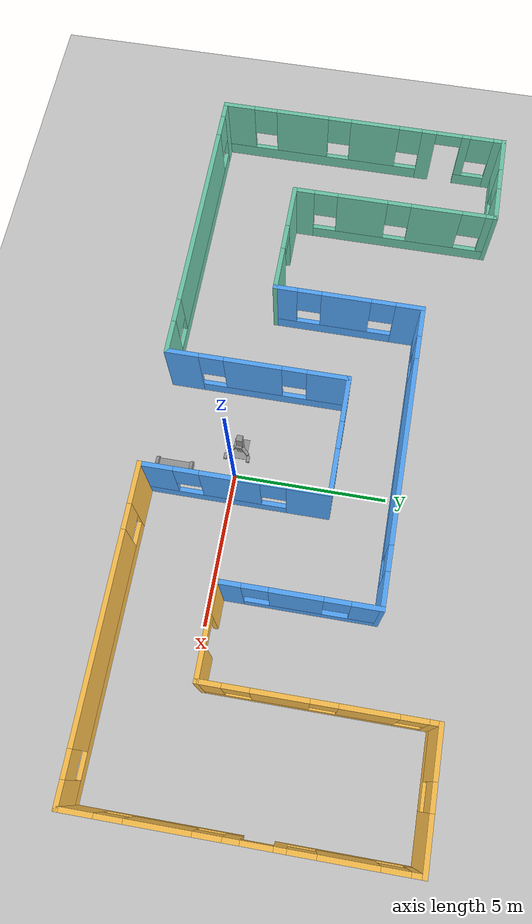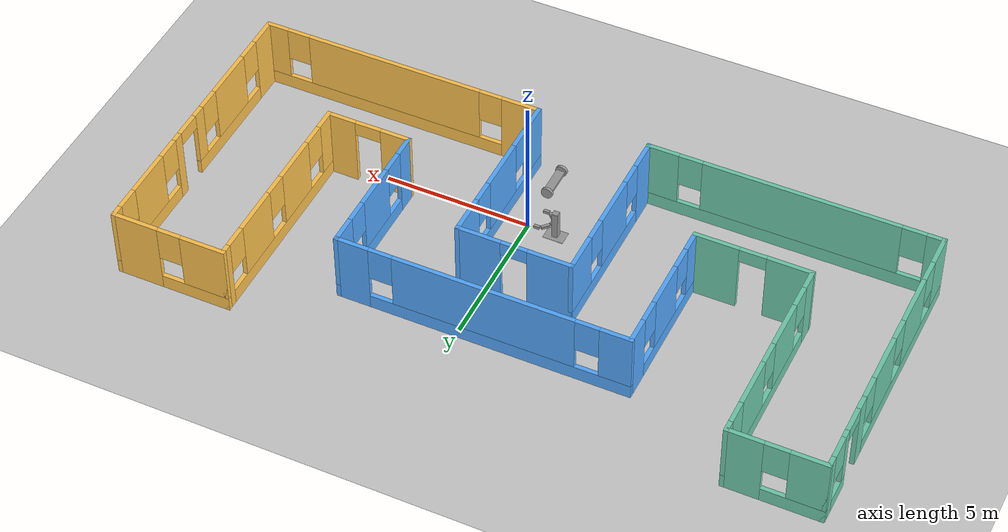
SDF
<sdf version="1.7">
 <world name="world2">
  <plugin name="welcome" filename="libwelcome.so"/>
  <light name="sun" type="directional">
   <pose>0 0 10 0 -0 0</pose>
   <diffuse>0.8 0.8 0.8 1</diffuse>
   <specular>0.2 0.2 0.2 1</specular>
   <attenuation>
    <range>1000</range>
    <constant>0.9</constant>
    <linear>0.01</linear>
    <quadratic>0.001</quadratic>
   </attenuation>
   <direction>-0.5 0.1 -0.9</direction>
   <spot><inner_angle>0</inner_angle><outer_angle>0</outer_angle><falloff>0</falloff></spot>
  </light>
  <model name="ground_plane">
   <static>1</static>
   <link name="link">
    <collision name="collision">
     <geometry><plane><normal>0 0 1</normal><size>100 100</size></plane></geometry>
     <surface><friction><ode><mu>100</mu><mu2>50</mu2></ode></friction></surface>
    </collision>
    <visual name="visual">
     <cast_shadows>0</cast_shadows>
     <geometry><plane><normal>0 0 1</normal><size>100 100</size></plane></geometry>
     <material>
      <script><uri>file://media/materials/scripts/gazebo.material</uri><name>Gazebo/Grey</name></script>
     </material>
    </visual>
   </link>
  </model>
  <gravity>0 0 -9.8</gravity>
  <magnetic_field>6e-06 2.3e-05 -4.2e-05</magnetic_field>
  <atmosphere type="adiabatic"/>
  <physics type="ode">
   <max_step_size>0.001</max_step_size>
   <real_time_factor>1</real_time_factor>
   <real_time_update_rate>1000</real_time_update_rate>
  </physics>
  <scene><ambient>0.4 0.4 0.4 1</ambient><background>0.7 0.7 0.7 1</background><shadows>1</shadows></scene>
  <spherical_coordinates>
   <surface_model>EARTH_WGS84</surface_model>
   <latitude_deg>0</latitude_deg>
   <longitude_deg>0</longitude_deg>
   <elevation>0</elevation>
   <heading_deg>0</heading_deg>
  </spherical_coordinates>
  <include><uri>model://gripper_base</uri><name>gripper</name><pose>-1 0 0.5 0 0 0</pose></include>
  <include><uri>model://hoverboard</uri><name>hoverboard0</name><pose>0 -2 0.2 0 0 0</pose></include>
  <include><uri>model://hoverboard</uri><name>hoverboard1</name><pose>0 -5 -0.4 0 0 0.6</pose></include>
  <include><uri>model://building1</uri><name>building1</name></include>
 </world>
</sdf>

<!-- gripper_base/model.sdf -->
<sdf version='1.7'>
  <model name='gripper_base'>
    <link name='riser'>
      <pose>0.02 0.02 0 -2e-06 -1.6e-05 -0.000932</pose>
      <inertial>
        <mass>10</mass>
        <inertia>
          <ixx>0.166667</ixx>
          <ixy>0</ixy>
          <ixz>0</ixz>
          <iyy>0.166667</iyy>
          <iyz>0</iyz>
          <izz>0.166667</izz>
        </inertia>
        <pose>0 0 0 0 -0 0</pose>
      </inertial>
      <self_collide>0</self_collide>
      <kinematic>0</kinematic>
      <enable_wind>0</enable_wind>
      <gravity>1</gravity>
      <visual name='visual'>
        <pose>0 0 0 0 -0 0</pose>
        <geometry>
          <box>
            <size>0.2 0.2 1</size>
          </box>
        </geometry>
        <material>
          <lighting>1</lighting>
          <script>
            <uri>file://media/materials/scripts/gazebo.material</uri>
            <name>Gazebo/Grey</name>
          </script>
          <ambient>0.3 0.3 0.3 1</ambient>
          <diffuse>0.7 0.7 0.7 1</diffuse>
          <specular>0.01 0.01 0.01 1</specular>
          <emissive>0 0 0 1</emissive>
          <shader type='vertex'>
            <normal_map>__default__</normal_map>
          </shader>
        </material>
        <transparency>0</transparency>
        <cast_shadows>1</cast_shadows>
      </visual>
      <collision name='collision'>
        <laser_retro>0</laser_retro>
        <max_contacts>10</max_contacts>
        <pose>0 0 0 0 -0 0</pose>
        <geometry>
          <box>
            <size>0.2 0.2 1</size>
          </box>
        </geometry>
        <surface>
          <friction>
            <ode>
              <mu>1</mu>
              <mu2>1</mu2>
              <fdir1>0 0 0</fdir1>
              <slip1>0</slip1>
              <slip2>0</slip2>
            </ode>
            <torsional>
              <coefficient>1</coefficient>
              <patch_radius>0</patch_radius>
              <surface_radius>0</surface_radius>
              <use_patch_radius>1</use_patch_radius>
              <ode>
                <slip>0</slip>
              </ode>
            </torsional>
          </friction>
          <bounce>
            <restitution_coefficient>0</restitution_coefficient>
            <threshold>1e+06</threshold>
          </bounce>
          <contact>
            <collide_without_contact>0</collide_without_contact>
            <collide_without_contact_bitmask>1</collide_without_contact_bitmask>
            <collide_bitmask>1</collide_bitmask>
            <ode>
              <soft_cfm>0</soft_cfm>
              <soft_erp>0.2</soft_erp>
              <kp>1e+13</kp>
              <kd>1</kd>
              <max_vel>0.01</max_vel>
              <min_depth>0</min_depth>
            </ode>
            <bullet>
              <split_impulse>1</split_impulse>
              <split_impulse_penetration_threshold>-0.01</split_impulse_penetration_threshold>
              <soft_cfm>0</soft_cfm>
              <soft_erp>0.2</soft_erp>
              <kp>1e+13</kp>
              <kd>1</kd>
            </bullet>
          </contact>
        </surface>
      </collision>
    </link>
    <link name='left_finger'>
      <pose>0.27277 0.243512 -0 0 0 -0.7854</pose>
      <inertial>
        <mass>0.1</mass>
        <inertia>
          <ixx>0.166667</ixx>
          <ixy>0</ixy>
          <ixz>0</ixz>
          <iyy>0.166667</iyy>
          <iyz>0</iyz>
          <izz>0.166667</izz>
        </inertia>
        <pose>0 0 0 0 -0 0</pose>
      </inertial>
      <self_collide>0</self_collide>
      <kinematic>0</kinematic>
      <enable_wind>0</enable_wind>
      <visual name='visual'>
        <pose>0 0 0 0 -0 0</pose>
        <geometry>
          <box>
            <size>0.1 0.3 0.1</size>
          </box>
        </geometry>
        <material>
          <lighting>1</lighting>
          <script>
            <uri>file://media/materials/scripts/gazebo.material</uri>
            <name>Gazebo/Grey</name>
          </script>
          <ambient>0.3 0.3 0.3 1</ambient>
          <diffuse>0.7 0.7 0.7 1</diffuse>
          <specular>0.01 0.01 0.01 1</specular>
          <emissive>0 0 0 1</emissive>
          <shader type='vertex'>
            <normal_map>__default__</normal_map>
          </shader>
        </material>
        <transparency>0</transparency>
        <cast_shadows>1</cast_shadows>
      </visual>
      <collision name='collision'>
        <laser_retro>0</laser_retro>
        <max_contacts>10</max_contacts>
        <pose>0 0 0 0 -0 0</pose>
        <geometry>
          <box>
            <size>0.1 0.3 0.1</size>
          </box>
        </geometry>
        <surface>
          <friction>
            <ode>
              <mu>1</mu>
              <mu2>1</mu2>
              <fdir1>0 0 0</fdir1>
              <slip1>0</slip1>
              <slip2>0</slip2>
            </ode>
            <torsional>
              <coefficient>1</coefficient>
              <patch_radius>0</patch_radius>
              <surface_radius>0</surface_radius>
              <use_patch_radius>1</use_patch_radius>
              <ode>
                <slip>0</slip>
              </ode>
            </torsional>
          </friction>
          <bounce>
            <restitution_coefficient>0</restitution_coefficient>
            <threshold>1e+06</threshold>
          </bounce>
          <contact>
            <collide_without_contact>0</collide_without_contact>
            <collide_without_contact_bitmask>1</collide_without_contact_bitmask>
            <collide_bitmask>1</collide_bitmask>
            <ode>
              <soft_cfm>0</soft_cfm>
              <soft_erp>0.2</soft_erp>
              <kp>1e+13</kp>
              <kd>1</kd>
              <max_vel>0.01</max_vel>
              <min_depth>0</min_depth>
            </ode>
            <bullet>
              <split_impulse>1</split_impulse>
              <split_impulse_penetration_threshold>-0.01</split_impulse_penetration_threshold>
              <soft_cfm>0</soft_cfm>
              <soft_erp>0.2</soft_erp>
              <kp>1e+13</kp>
              <kd>1</kd>
            </bullet>
          </contact>
        </surface>
      </collision>
    </link>
    <link name='left_fingertip'>
      <pose>0.516026 0.369208 0 0 0 -1.5707</pose>
      <inertial>
        <mass>0.1</mass>
        <inertia>
          <ixx>0.166667</ixx>
          <ixy>0</ixy>
          <ixz>0</ixz>
          <iyy>0.166667</iyy>
          <iyz>0</iyz>
          <izz>0.166667</izz>
        </inertia>
        <pose>0 0 0 0 -0 0</pose>
      </inertial>
      <self_collide>0</self_collide>
      <kinematic>0</kinematic>
      <enable_wind>0</enable_wind>
      <visual name='visual'>
        <pose>0 0 0 0 -0 0</pose>
        <geometry>
          <box>
            <size>0.1 0.2 0.1</size>
          </box>
        </geometry>
        <material>
          <lighting>1</lighting>
          <script>
            <uri>file://media/materials/scripts/gazebo.material</uri>
            <name>Gazebo/Grey</name>
          </script>
          <ambient>0.3 0.3 0.3 1</ambient>
          <diffuse>0.7 0.7 0.7 1</diffuse>
          <specular>0.01 0.01 0.01 1</specular>
          <emissive>0 0 0 1</emissive>
          <shader type='vertex'>
            <normal_map>__default__</normal_map>
          </shader>
        </material>
        <transparency>0</transparency>
        <cast_shadows>1</cast_shadows>
      </visual>
      <collision name='collision'>
        <laser_retro>0</laser_retro>
        <max_contacts>10</max_contacts>
        <pose>0 0 0 0 -0 0</pose>
        <geometry>
          <box>
            <size>0.1 0.2 0.1</size>
          </box>
        </geometry>
        <surface>
          <friction>
            <ode>
              <mu>1</mu>
              <mu2>1</mu2>
              <fdir1>0 0 0</fdir1>
              <slip1>0</slip1>
              <slip2>0</slip2>
            </ode>
            <torsional>
              <coefficient>1</coefficient>
              <patch_radius>0</patch_radius>
              <surface_radius>0</surface_radius>
              <use_patch_radius>1</use_patch_radius>
              <ode>
                <slip>0</slip>
              </ode>
            </torsional>
          </friction>
          <bounce>
            <restitution_coefficient>0</restitution_coefficient>
            <threshold>1e+06</threshold>
          </bounce>
          <contact>
            <collide_without_contact>0</collide_without_contact>
            <collide_without_contact_bitmask>1</collide_without_contact_bitmask>
            <collide_bitmask>1</collide_bitmask>
            <ode>
              <soft_cfm>0</soft_cfm>
              <soft_erp>0.2</soft_erp>
              <kp>1e+13</kp>
              <kd>1</kd>
              <max_vel>0.01</max_vel>
              <min_depth>0</min_depth>
            </ode>
            <bullet>
              <split_impulse>1</split_impulse>
              <split_impulse_penetration_threshold>-0.01</split_impulse_penetration_threshold>
              <soft_cfm>0</soft_cfm>
              <soft_erp>0.2</soft_erp>
              <kp>1e+13</kp>
              <kd>1</kd>
            </bullet>
          </contact>
        </surface>
      </collision>
    </link>
    <link name='base'>
      <inertial>
        <mass>19</mass>
        <inertia>
          <ixx>0.395992</ixx>
          <ixy>0</ixy>
          <ixz>0</ixz>
          <iyy>0.395992</iyy>
          <iyz>0</iyz>
          <izz>0.791667</izz>
        </inertia>
        <pose>0 0 0 0 -0 0</pose>
      </inertial>
      <pose>0.020008 0.019999 -0.493 -0 -0 -0.000932</pose>
      <gravity>1</gravity>
      <self_collide>0</self_collide>
      <kinematic>0</kinematic>
      <enable_wind>0</enable_wind>
      <visual name='visual'>
        <pose>0 0 0 0 -0 0</pose>
        <geometry>
          <box>
            <size>0.7 0.5 0.01</size>
          </box>
        </geometry>
        <material>
          <lighting>1</lighting>
          <script>
            <uri>file://media/materials/scripts/gazebo.material</uri>
            <name>Gazebo/Grey</name>
          </script>
          <shader type='pixel'>
            <normal_map>__default__</normal_map>
          </shader>
          <ambient>0.3 0.3 0.3 1</ambient>
          <diffuse>0.7 0.7 0.7 1</diffuse>
          <specular>0.01 0.01 0.01 1</specular>
          <emissive>0 0 0 1</emissive>
        </material>
        <transparency>0</transparency>
        <cast_shadows>1</cast_shadows>
      </visual>
      <collision name='collision'>
        <laser_retro>0</laser_retro>
        <max_contacts>10</max_contacts>
        <pose>0 0 0 0 -0 0</pose>
        <geometry>
          <box>
            <size>0.7 0.5 0.01</size>
          </box>
        </geometry>
        <surface>
          <friction>
            <ode>
              <mu>1</mu>
              <mu2>1</mu2>
              <fdir1>0 0 0</fdir1>
              <slip1>0</slip1>
              <slip2>0</slip2>
            </ode>
            <torsional>
              <coefficient>1</coefficient>
              <patch_radius>0</patch_radius>
              <surface_radius>0</surface_radius>
              <use_patch_radius>1</use_patch_radius>
              <ode>
                <slip>0</slip>
              </ode>
            </torsional>
          </friction>
          <bounce>
            <restitution_coefficient>0</restitution_coefficient>
            <threshold>1e+06</threshold>
          </bounce>
          <contact>
            <collide_without_contact>0</collide_without_contact>
            <collide_without_contact_bitmask>1</collide_without_contact_bitmask>
            <collide_bitmask>1</collide_bitmask>
            <ode>
              <soft_cfm>0</soft_cfm>
              <soft_erp>0.2</soft_erp>
              <kp>1e+13</kp>
              <kd>1</kd>
              <max_vel>0.01</max_vel>
              <min_depth>0</min_depth>
            </ode>
            <bullet>
              <split_impulse>1</split_impulse>
              <split_impulse_penetration_threshold>-0.01</split_impulse_penetration_threshold>
              <soft_cfm>0</soft_cfm>
              <soft_erp>0.2</soft_erp>
              <kp>1e+13</kp>
              <kd>1</kd>
            </bullet>
          </contact>
        </surface>
      </collision>
    </link>
    <link name='palm'>
      <pose>0.15 -0 -0 0 -0 0</pose>
      <inertial>
        <mass>0.5</mass>
        <inertia>
          <ixx>0.166667</ixx>
          <ixy>0</ixy>
          <ixz>0</ixz>
          <iyy>0.166667</iyy>
          <iyz>0</iyz>
          <izz>0.166667</izz>
        </inertia>
        <pose>0 0 0 0 -0 0</pose>
      </inertial>
      <self_collide>0</self_collide>
      <kinematic>0</kinematic>
      <enable_wind>0</enable_wind>
      <visual name='visual'>
        <pose>0 0 0 0 -0 0</pose>
        <geometry>
          <box>
            <size>0.1 0.2 0.1</size>
          </box>
        </geometry>
        <material>
          <lighting>1</lighting>
          <script>
            <uri>file://media/materials/scripts/gazebo.material</uri>
            <name>Gazebo/Grey</name>
          </script>
          <ambient>0.3 0.3 0.3 1</ambient>
          <diffuse>0.7 0.7 0.7 1</diffuse>
          <specular>0.01 0.01 0.01 1</specular>
          <emissive>0 0 0 1</emissive>
          <shader type='vertex'>
            <normal_map>__default__</normal_map>
          </shader>
        </material>
        <transparency>0</transparency>
        <cast_shadows>1</cast_shadows>
      </visual>
      <collision name='collision'>
        <laser_retro>0</laser_retro>
        <max_contacts>10</max_contacts>
        <pose>0 0 0 0 -0 0</pose>
        <geometry>
          <box>
            <size>0.1 0.2 0.1</size>
          </box>
        </geometry>
        <surface>
          <friction>
            <ode>
              <mu>1</mu>
              <mu2>1</mu2>
              <fdir1>0 0 0</fdir1>
              <slip1>0</slip1>
              <slip2>0</slip2>
            </ode>
            <torsional>
              <coefficient>1</coefficient>
              <patch_radius>0</patch_radius>
              <surface_radius>0</surface_radius>
              <use_patch_radius>1</use_patch_radius>
              <ode>
                <slip>0</slip>
              </ode>
            </torsional>
          </friction>
          <bounce>
            <restitution_coefficient>0</restitution_coefficient>
            <threshold>1e+06</threshold>
          </bounce>
          <contact>
            <collide_without_contact>0</collide_without_contact>
            <collide_without_contact_bitmask>1</collide_without_contact_bitmask>
            <collide_bitmask>1</collide_bitmask>
            <ode>
              <soft_cfm>0</soft_cfm>
              <soft_erp>0.2</soft_erp>
              <kp>1e+13</kp>
              <kd>1</kd>
              <max_vel>0.01</max_vel>
              <min_depth>0</min_depth>
            </ode>
            <bullet>
              <split_impulse>1</split_impulse>
              <split_impulse_penetration_threshold>-0.01</split_impulse_penetration_threshold>
              <soft_cfm>0</soft_cfm>
              <soft_erp>0.2</soft_erp>
              <kp>1e+13</kp>
              <kd>1</kd>
            </bullet>
          </contact>
        </surface>
      </collision>
    </link>
    <link name='right_finger'>
      <pose>0.27277 -0.243512 0 0 -0 0.7854</pose>
      <inertial>
        <mass>0.1</mass>
        <inertia>
          <ixx>0.166667</ixx>
          <ixy>0</ixy>
          <ixz>0</ixz>
          <iyy>0.166667</iyy>
          <iyz>0</iyz>
          <izz>0.166667</izz>
        </inertia>
        <pose>0 0 0 0 -0 0</pose>
      </inertial>
      <self_collide>0</self_collide>
      <kinematic>0</kinematic>
      <enable_wind>0</enable_wind>
      <visual name='visual'>
        <pose>0 0 0 0 -0 0</pose>
        <geometry>
          <box>
            <size>0.1 0.3 0.1</size>
          </box>
        </geometry>
        <material>
          <lighting>1</lighting>
          <script>
            <uri>file://media/materials/scripts/gazebo.material</uri>
            <name>Gazebo/Grey</name>
          </script>
          <ambient>0.3 0.3 0.3 1</ambient>
          <diffuse>0.7 0.7 0.7 1</diffuse>
          <specular>0.01 0.01 0.01 1</specular>
          <emissive>0 0 0 1</emissive>
          <shader type='vertex'>
            <normal_map>__default__</normal_map>
          </shader>
        </material>
        <transparency>0</transparency>
        <cast_shadows>1</cast_shadows>
      </visual>
      <collision name='collision'>
        <laser_retro>0</laser_retro>
        <max_contacts>10</max_contacts>
        <pose>0 0 0 0 -0 0</pose>
        <geometry>
          <box>
            <size>0.1 0.3 0.1</size>
          </box>
        </geometry>
        <surface>
          <friction>
            <ode>
              <mu>1</mu>
              <mu2>1</mu2>
              <fdir1>0 0 0</fdir1>
              <slip1>0</slip1>
              <slip2>0</slip2>
            </ode>
            <torsional>
              <coefficient>1</coefficient>
              <patch_radius>0</patch_radius>
              <surface_radius>0</surface_radius>
              <use_patch_radius>1</use_patch_radius>
              <ode>
                <slip>0</slip>
              </ode>
            </torsional>
          </friction>
          <bounce>
            <restitution_coefficient>0</restitution_coefficient>
            <threshold>1e+06</threshold>
          </bounce>
          <contact>
            <collide_without_contact>0</collide_without_contact>
            <collide_without_contact_bitmask>1</collide_without_contact_bitmask>
            <collide_bitmask>1</collide_bitmask>
            <ode>
              <soft_cfm>0</soft_cfm>
              <soft_erp>0.2</soft_erp>
              <kp>1e+13</kp>
              <kd>1</kd>
              <max_vel>0.01</max_vel>
              <min_depth>0</min_depth>
            </ode>
            <bullet>
              <split_impulse>1</split_impulse>
              <split_impulse_penetration_threshold>-0.01</split_impulse_penetration_threshold>
              <soft_cfm>0</soft_cfm>
              <soft_erp>0.2</soft_erp>
              <kp>1e+13</kp>
              <kd>1</kd>
            </bullet>
          </contact>
        </surface>
      </collision>
    </link>
    <link name='right_fingertip'>
      <pose>0.516026 -0.369208 -0 0 -0 1.5707</pose>
      <inertial>
        <mass>0.1</mass>
        <inertia>
          <ixx>0.166667</ixx>
          <ixy>0</ixy>
          <ixz>0</ixz>
          <iyy>0.166667</iyy>
          <iyz>0</iyz>
          <izz>0.166667</izz>
        </inertia>
        <pose>0 0 0 0 -0 0</pose>
      </inertial>
      <self_collide>0</self_collide>
      <kinematic>0</kinematic>
      <enable_wind>0</enable_wind>
      <visual name='visual'>
        <pose>0 0 0 0 -0 0</pose>
        <geometry>
          <box>
            <size>0.1 0.2 0.1</size>
          </box>
        </geometry>
        <material>
          <lighting>1</lighting>
          <script>
            <uri>file://media/materials/scripts/gazebo.material</uri>
            <name>Gazebo/Grey</name>
          </script>
          <ambient>0.3 0.3 0.3 1</ambient>
          <diffuse>0.7 0.7 0.7 1</diffuse>
          <specular>0.01 0.01 0.01 1</specular>
          <emissive>0 0 0 1</emissive>
          <shader type='vertex'>
            <normal_map>__default__</normal_map>
          </shader>
        </material>
        <transparency>0</transparency>
        <cast_shadows>1</cast_shadows>
      </visual>
      <collision name='collision'>
        <laser_retro>0</laser_retro>
        <max_contacts>10</max_contacts>
        <pose>0 0 0 0 -0 0</pose>
        <geometry>
          <box>
            <size>0.1 0.2 0.1</size>
          </box>
        </geometry>
        <surface>
          <friction>
            <ode>
              <mu>1</mu>
              <mu2>1</mu2>
              <fdir1>0 0 0</fdir1>
              <slip1>0</slip1>
              <slip2>0</slip2>
            </ode>
            <torsional>
              <coefficient>1</coefficient>
              <patch_radius>0</patch_radius>
              <surface_radius>0</surface_radius>
              <use_patch_radius>1</use_patch_radius>
              <ode>
                <slip>0</slip>
              </ode>
            </torsional>
          </friction>
          <bounce>
            <restitution_coefficient>0</restitution_coefficient>
            <threshold>1e+06</threshold>
          </bounce>
          <contact>
            <collide_without_contact>0</collide_without_contact>
            <collide_without_contact_bitmask>1</collide_without_contact_bitmask>
            <collide_bitmask>1</collide_bitmask>
            <ode>
              <soft_cfm>0</soft_cfm>
              <soft_erp>0.2</soft_erp>
              <kp>1e+13</kp>
              <kd>1</kd>
              <max_vel>0.01</max_vel>
              <min_depth>0</min_depth>
            </ode>
            <bullet>
              <split_impulse>1</split_impulse>
              <split_impulse_penetration_threshold>-0.01</split_impulse_penetration_threshold>
              <soft_cfm>0</soft_cfm>
              <soft_erp>0.2</soft_erp>
              <kp>1e+13</kp>
              <kd>1</kd>
            </bullet>
          </contact>
        </surface>
      </collision>
    </link>
    <joint name='left_finger_joint' type='revolute'>
      <parent>palm</parent>
      <child>left_finger</child>
      <pose>0.05 -0.15 0 0 -0 0</pose>
      <axis>
        <xyz>0 0 -1</xyz>
        <limit>
          <lower>-0.4</lower>
          <upper>0.4</upper>
          <effort>-1</effort>
          <velocity>-1</velocity>
        </limit>
        <dynamics>
          <spring_reference>0</spring_reference>
          <spring_stiffness>0</spring_stiffness>
          <damping>0</damping>
          <friction>0</friction>
        </dynamics>
      </axis>
      <physics>
        <ode>
          <limit>
            <cfm>0</cfm>
            <erp>0.2</erp>
          </limit>
          <suspension>
            <cfm>0</cfm>
            <erp>0.2</erp>
          </suspension>
        </ode>
      </physics>
    </joint>
    <joint name='left_tip_joint' type='revolute'>
      <parent>left_finger</parent>
      <child>left_fingertip</child>
      <pose>0.05 -0.1 0 0 -0 0</pose>
      <axis>
        <xyz>0 0 -1</xyz>
        <limit>
          <lower>-0.4</lower>
          <upper>0.4</upper>
          <effort>-1</effort>
          <velocity>-1</velocity>
        </limit>
        <dynamics>
          <spring_reference>0</spring_reference>
          <spring_stiffness>0</spring_stiffness>
          <damping>0</damping>
          <friction>0</friction>
        </dynamics>
      </axis>
      <physics>
        <ode>
          <limit>
            <cfm>0</cfm>
            <erp>0.2</erp>
          </limit>
          <suspension>
            <cfm>0</cfm>
            <erp>0.2</erp>
          </suspension>
        </ode>
      </physics>
    </joint>
    <joint name='base_JOINT_0' type='fixed'>
      <parent>base</parent>
      <child>riser</child>
      <pose>0 0 0 0 -0 0</pose>
      <physics>
        <ode>
          <limit>
            <cfm>0</cfm>
            <erp>0.2</erp>
          </limit>
          <suspension>
            <cfm>0</cfm>
            <erp>0.2</erp>
          </suspension>
        </ode>
      </physics>
    </joint>
    <joint name='right_finger_joint' type='revolute'>
      <parent>palm</parent>
      <child>right_finger</child>
      <pose>0.05 0.15 0 0 -0 0</pose>
      <axis>
        <xyz>0 0 1</xyz>
        <limit>
          <lower>-0.4</lower>
          <upper>0.4</upper>
          <effort>-1</effort>
          <velocity>-1</velocity>
        </limit>
        <dynamics>
          <spring_reference>0</spring_reference>
          <spring_stiffness>0</spring_stiffness>
          <damping>0</damping>
          <friction>0</friction>
        </dynamics>
      </axis>
      <physics>
        <ode>
          <limit>
            <cfm>0</cfm>
            <erp>0.2</erp>
          </limit>
          <suspension>
            <cfm>0</cfm>
            <erp>0.2</erp>
          </suspension>
        </ode>
      </physics>
    </joint>
    <joint name='right_tip_joint' type='revolute'>
      <parent>right_finger</parent>
      <child>right_fingertip</child>
      <pose>0.05 0.1 0 0 -0 0</pose>
      <axis>
        <xyz>0 0 1</xyz>
        <limit>
          <lower>-0.4</lower>
          <upper>0.4</upper>
          <effort>-1</effort>
          <velocity>-1</velocity>
        </limit>
        <dynamics>
          <spring_reference>0</spring_reference>
          <spring_stiffness>0</spring_stiffness>
          <damping>0</damping>
          <friction>0</friction>
        </dynamics>
      </axis>
      <physics>
        <ode>
          <limit>
            <cfm>0</cfm>
            <erp>0.2</erp>
          </limit>
          <suspension>
            <cfm>0</cfm>
            <erp>0.2</erp>
          </suspension>
        </ode>
      </physics>
    </joint>
    <joint name='riser_joint' type='prismatic'>
      <parent>riser</parent>
      <child>palm</child>
      <pose>0 0 0 0 -0 0</pose>
      <axis>
        <xyz>0 0 1</xyz>
        <limit>
          <lower>-0.4</lower>
          <upper>0.4</upper>
          <effort>-1</effort>
          <velocity>-1</velocity>
        </limit>
        <dynamics>
          <spring_reference>0</spring_reference>
          <spring_stiffness>0</spring_stiffness>
          <damping>0</damping>
          <friction>0</friction>
        </dynamics>
      </axis>
      <physics>
        <ode>
          <limit>
            <cfm>0</cfm>
            <erp>0.2</erp>
          </limit>
          <suspension>
            <cfm>0</cfm>
            <erp>0.2</erp>
          </suspension>
        </ode>
      </physics>
    </joint>
    <static>0</static>
    <allow_auto_disable>1</allow_auto_disable>
    <plugin name='gripper' filename='libgripper.so'>
      <riser_position>0</riser_position>
      <finger_position>0</finger_position>
      <tip_position>0</tip_position>
    </plugin>
  </model>
</sdf>

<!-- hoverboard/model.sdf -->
<sdf version='1.6'>
  <model name='hoverboard'>
    <link name='chassis'>
      <pose frame=''>0 0 0 0 -0 0</pose>
      <inertial>
        <mass>1</mass>
        <inertia>
          <ixx>0.166667</ixx>
          <ixy>0</ixy>
          <ixz>0</ixz>
          <iyy>0.166667</iyy>
          <iyz>0</iyz>
          <izz>0.166667</izz>
        </inertia>
        <pose frame=''>0 0 0 0 -0 0</pose>
      </inertial>
      <self_collide>0</self_collide>
      <kinematic>0</kinematic>
      <visual name='visual'>
        <pose frame=''>0 0 0 0 -0 0</pose>
        <geometry>
          <box>
            <size>0.3 1 0.1</size>
          </box>
        </geometry>
        <material>
          <lighting>1</lighting>
          <script>
            <uri>file://media/materials/scripts/gazebo.material</uri>
            <name>Gazebo/Grey</name>
          </script>
          <ambient>0.3 0.3 0.3 1</ambient>
          <diffuse>0.7 0.7 0.7 1</diffuse>
          <specular>0.01 0.01 0.01 1</specular>
          <emissive>0 0 0 1</emissive>
          <shader type='vertex'>
            <normal_map>__default__</normal_map>
          </shader>
        </material>
        <transparency>0</transparency>
        <cast_shadows>1</cast_shadows>
      </visual>
      <collision name='collision'>
        <laser_retro>0</laser_retro>
        <max_contacts>10</max_contacts>
        <pose frame=''>0 0 0 0 -0 0</pose>
        <geometry>
          <box>
            <size>0.3 1 0.1</size>
          </box>
        </geometry>
        <surface>
          <friction>
            <ode>
              <mu>1</mu>
              <mu2>1</mu2>
              <fdir1>0 0 0</fdir1>
              <slip1>0</slip1>
              <slip2>0</slip2>
            </ode>
            <torsional>
              <coefficient>1</coefficient>
              <patch_radius>0</patch_radius>
              <surface_radius>0</surface_radius>
              <use_patch_radius>1</use_patch_radius>
              <ode>
                <slip>0</slip>
              </ode>
            </torsional>
          </friction>
          <bounce>
            <restitution_coefficient>0</restitution_coefficient>
            <threshold>1e+06</threshold>
          </bounce>
          <contact>
            <collide_without_contact>0</collide_without_contact>
            <collide_without_contact_bitmask>1</collide_without_contact_bitmask>
            <collide_bitmask>1</collide_bitmask>
            <ode>
              <soft_cfm>0</soft_cfm>
              <soft_erp>0.2</soft_erp>
              <kp>1e+13</kp>
              <kd>1</kd>
              <max_vel>0.01</max_vel>
              <min_depth>0</min_depth>
            </ode>
            <bullet>
              <split_impulse>1</split_impulse>
              <split_impulse_penetration_threshold>-0.01</split_impulse_penetration_threshold>
              <soft_cfm>0</soft_cfm>
              <soft_erp>0.2</soft_erp>
              <kp>1e+13</kp>
              <kd>1</kd>
            </bullet>
          </contact>
        </surface>
      </collision>
    </link>
    <link name='left_wheel'>
      <pose frame=''>0 0.56 0 1.5707 -0 0</pose>
      <inertial>
        <mass>1</mass>
        <inertia>
          <ixx>0.145833</ixx>
          <ixy>0</ixy>
          <ixz>0</ixz>
          <iyy>0.145833</iyy>
          <iyz>0</iyz>
          <izz>0.125</izz>
        </inertia>
        <pose frame=''>0 0 0 0 -0 0</pose>
      </inertial>
      <self_collide>0</self_collide>
      <kinematic>0</kinematic>
      <visual name='visual'>
        <pose frame=''>0 0 0 0 -0 0</pose>
        <geometry>
          <cylinder>
            <radius>0.2</radius>
            <length>0.1</length>
          </cylinder>
        </geometry>
        <material>
          <lighting>1</lighting>
          <script>
            <uri>file://media/materials/scripts/gazebo.material</uri>
            <name>Gazebo/Grey</name>
          </script>
          <ambient>0.3 0.3 0.3 1</ambient>
          <diffuse>0.7 0.7 0.7 1</diffuse>
          <specular>0.01 0.01 0.01 1</specular>
          <emissive>0 0 0 1</emissive>
          <shader type='vertex'>
            <normal_map>__default__</normal_map>
          </shader>
        </material>
        <transparency>0</transparency>
        <cast_shadows>1</cast_shadows>
      </visual>
      <collision name='collision'>
        <laser_retro>0</laser_retro>
        <max_contacts>10</max_contacts>
        <pose frame=''>0 0 0 0 -0 0</pose>
        <geometry>
          <cylinder>
            <radius>0.2</radius>
            <length>0.1</length>
          </cylinder>
        </geometry>
        <surface>
          <friction>
            <ode>
              <mu>1</mu>
              <mu2>1</mu2>
              <fdir1>0 0 0</fdir1>
              <slip1>0</slip1>
              <slip2>0</slip2>
            </ode>
            <torsional>
              <coefficient>1</coefficient>
              <patch_radius>0</patch_radius>
              <surface_radius>0</surface_radius>
              <use_patch_radius>1</use_patch_radius>
              <ode>
                <slip>0</slip>
              </ode>
            </torsional>
          </friction>
          <bounce>
            <restitution_coefficient>0</restitution_coefficient>
            <threshold>1e+06</threshold>
          </bounce>
          <contact>
            <collide_without_contact>0</collide_without_contact>
            <collide_without_contact_bitmask>1</collide_without_contact_bitmask>
            <collide_bitmask>1</collide_bitmask>
            <ode>
              <soft_cfm>0</soft_cfm>
              <soft_erp>0.2</soft_erp>
              <kp>1e+13</kp>
              <kd>1</kd>
              <max_vel>0.01</max_vel>
              <min_depth>0</min_depth>
            </ode>
            <bullet>
              <split_impulse>1</split_impulse>
              <split_impulse_penetration_threshold>-0.01</split_impulse_penetration_threshold>
              <soft_cfm>0</soft_cfm>
              <soft_erp>0.2</soft_erp>
              <kp>1e+13</kp>
              <kd>1</kd>
            </bullet>
          </contact>
        </surface>
      </collision>
    </link>
    <link name='right_wheel'>
      <pose frame=''>0 -0.56 0 1.5707 -0 0</pose>
      <inertial>
        <mass>1</mass>
        <inertia>
          <ixx>0.145833</ixx>
          <ixy>0</ixy>
          <ixz>0</ixz>
          <iyy>0.145833</iyy>
          <iyz>0</iyz>
          <izz>0.125</izz>
        </inertia>
        <pose frame=''>0 0 0 0 -0 0</pose>
      </inertial>
      <self_collide>0</self_collide>
      <kinematic>0</kinematic>
      <visual name='visual'>
        <pose frame=''>0 0 0 0 -0 0</pose>
        <geometry>
          <cylinder>
            <radius>0.2</radius>
            <length>0.1</length>
          </cylinder>
        </geometry>
        <material>
          <lighting>1</lighting>
          <script>
            <uri>file://media/materials/scripts/gazebo.material</uri>
            <name>Gazebo/Grey</name>
          </script>
          <ambient>0.3 0.3 0.3 1</ambient>
          <diffuse>0.7 0.7 0.7 1</diffuse>
          <specular>0.01 0.01 0.01 1</specular>
          <emissive>0 0 0 1</emissive>
          <shader type='vertex'>
            <normal_map>__default__</normal_map>
          </shader>
        </material>
        <transparency>0</transparency>
        <cast_shadows>1</cast_shadows>
      </visual>
      <collision name='collision'>
        <laser_retro>0</laser_retro>
        <max_contacts>10</max_contacts>
        <pose frame=''>0 0 0 0 -0 0</pose>
        <geometry>
          <cylinder>
            <radius>0.2</radius>
            <length>0.1</length>
          </cylinder>
        </geometry>
        <surface>
          <friction>
            <ode>
              <mu>1</mu>
              <mu2>1</mu2>
              <fdir1>0 0 0</fdir1>
              <slip1>0</slip1>
              <slip2>0</slip2>
            </ode>
            <torsional>
              <coefficient>1</coefficient>
              <patch_radius>0</patch_radius>
              <surface_radius>0</surface_radius>
              <use_patch_radius>1</use_patch_radius>
              <ode>
                <slip>0</slip>
              </ode>
            </torsional>
          </friction>
          <bounce>
            <restitution_coefficient>0</restitution_coefficient>
            <threshold>1e+06</threshold>
          </bounce>
          <contact>
            <collide_without_contact>0</collide_without_contact>
            <collide_without_contact_bitmask>1</collide_without_contact_bitmask>
            <collide_bitmask>1</collide_bitmask>
            <ode>
              <soft_cfm>0</soft_cfm>
              <soft_erp>0.2</soft_erp>
              <kp>1e+13</kp>
              <kd>1</kd>
              <max_vel>0.01</max_vel>
              <min_depth>0</min_depth>
            </ode>
            <bullet>
              <split_impulse>1</split_impulse>
              <split_impulse_penetration_threshold>-0.01</split_impulse_penetration_threshold>
              <soft_cfm>0</soft_cfm>
              <soft_erp>0.2</soft_erp>
              <kp>1e+13</kp>
              <kd>1</kd>
            </bullet>
          </contact>
        </surface>
      </collision>
    </link>
    <joint name='left_wheel_joint' type='revolute'>
      <parent>chassis</parent>
      <child>left_wheel</child>
      <pose frame=''>0 0 0 0 -0 0</pose>
      <axis>
        <xyz>0 1 0</xyz>
        <use_parent_model_frame>1</use_parent_model_frame>
        <limit>
          <lower>-1.79769e+308</lower>
          <upper>1.79769e+308</upper>
          <effort>-1</effort>
          <velocity>-1</velocity>
        </limit>
        <dynamics>
          <spring_reference>0</spring_reference>
          <spring_stiffness>0</spring_stiffness>
          <damping>0</damping>
          <friction>0</friction>
        </dynamics>
      </axis>
      <physics>
        <ode>
          <limit>
            <cfm>0</cfm>
            <erp>0.2</erp>
          </limit>
          <suspension>
            <cfm>0</cfm>
            <erp>0.2</erp>
          </suspension>
        </ode>
      </physics>
    </joint>
    <joint name='right_wheel_joint' type='revolute'>
      <parent>chassis</parent>
      <child>right_wheel</child>
      <pose frame=''>0 0 0 0 -0 0</pose>
      <axis>
        <xyz>0 1 0</xyz>
        <use_parent_model_frame>1</use_parent_model_frame>
        <limit>
          <lower>-1.79769e+308</lower>
          <upper>1.79769e+308</upper>
          <effort>-1</effort>
          <velocity>-1</velocity>
        </limit>
        <dynamics>
          <spring_reference>0</spring_reference>
          <spring_stiffness>0</spring_stiffness>
          <damping>0</damping>
          <friction>0</friction>
        </dynamics>
      </axis>
      <physics>
        <ode>
          <limit>
            <cfm>0</cfm>
            <erp>0.2</erp>
          </limit>
          <suspension>
            <cfm>0</cfm>
            <erp>0.2</erp>
          </suspension>
        </ode>
      </physics>
    </joint>
    <static>0</static>
    <allow_auto_disable>1</allow_auto_disable>
    <plugin name='hoverboard' filename='libhoverboard.so'>
    <lin_velocity>0</lin_velocity>
    <ang_velocity>0</ang_velocity>
    </plugin>
  </model>
</sdf>
